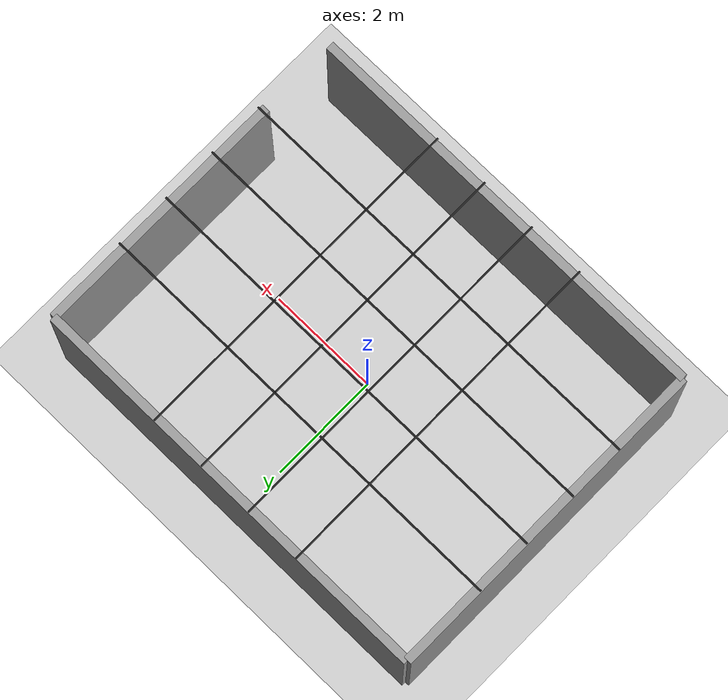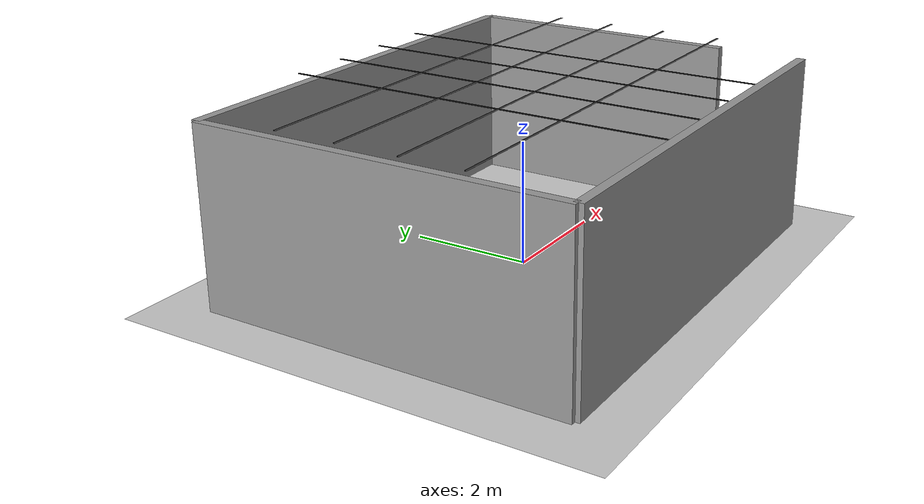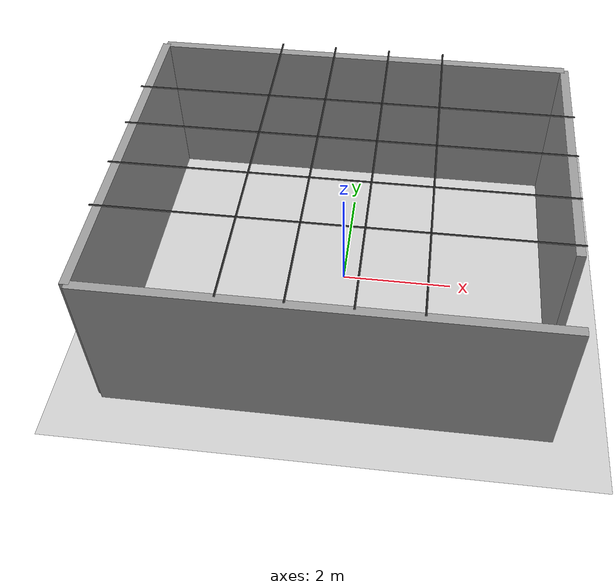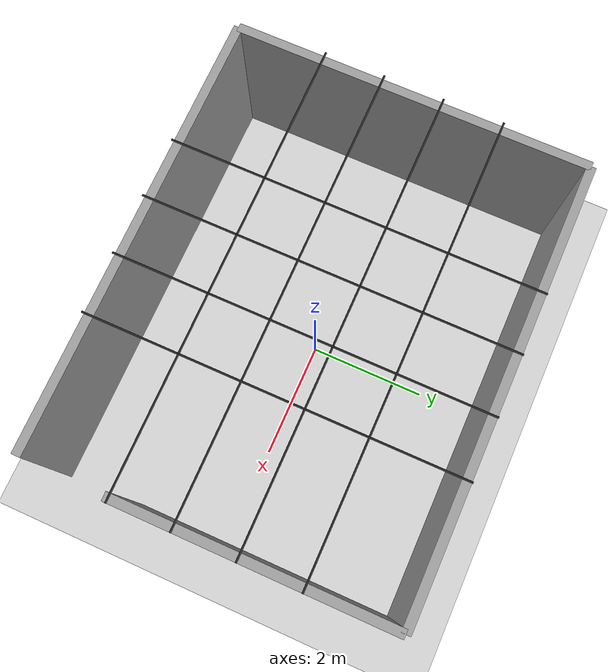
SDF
<?xml version="1.0" ?>
<sdf version="1.6">
 <world name="default">
    <include>
      <uri>model://ground_plane</uri>
    </include>
    <include>
      <uri>model://sun</uri>
    </include>

  <model name='Lab'>
    <pose frame=''>0 0 0 0 0 0</pose>

    <link name='Wall_1'>
      <collision name='Wall_1_Collision'>
        <geometry>
          <box>
            <size>4.6 0.15 3.25</size>
          </box>
        </geometry>
        <pose frame=''>0 0 1.25 0 0 0</pose>
      </collision>
      <visual name='Wall_1_Visual'>
        <pose frame=''>0 0 1.25 0 0 0</pose>
        <geometry>
          <box>
            <size>4.6 0.15 3.25</size>
          </box>
        </geometry>
        <material>
          <script>
            <uri>file://media/materials/scripts/gazebo.material</uri>
            <name>Gazebo/Grey</name>
          </script>
          <ambient>1 1 1 1</ambient>
        </material>
        <meta>
          <layer>0</layer>
        </meta>
      </visual>
      <pose frame=''>3.75 0.7 0 0 0 1.5708</pose>
    </link>

    <link name='Wall_2'>
      <collision name='Wall_2_Collision'>
        <geometry>
          <box>
            <size>7.5 0.15 3.25</size>
          </box>
        </geometry>
        <pose frame=''>0 0 1.25 0 0 0</pose>
      </collision>
      <visual name='Wall_2_Visual'>
        <pose frame=''>0 0 1.25 0 0 0</pose>
        <geometry>
          <box>
            <size>7.5 0.15 3.25</size>
          </box>
        </geometry>
        <material>
          <script>
            <uri>file://media/materials/scripts/gazebo.material</uri>
            <name>Gazebo/Grey</name>
          </script>
          <ambient>1 1 1 1</ambient>
        </material>
        <meta>
          <layer>0</layer>
        </meta>
      </visual>
      <pose frame=''>0 3 0 0 0 3.14159</pose>
    </link>

    <link name='Wall_3'>
      <collision name='Wall_3_Collision'>
        <geometry>
          <box>
            <size>6 0.15 3.25</size>
          </box>
        </geometry>
        <pose frame=''>0 0 1.25 0 0 0</pose>
      </collision>
      <visual name='Wall_3_Visual'>
        <pose frame=''>0 0 1.25 0 0 0</pose>
        <geometry>
          <box>
            <size>6 0.15 3.25</size>
          </box>
        </geometry>
        <material>
          <script>
            <uri>file://media/materials/scripts/gazebo.material</uri>
            <name>Gazebo/Grey</name>
          </script>
          <ambient>1 1 1 1</ambient>
        </material>
        <meta>
          <layer>0</layer>
        </meta>
      </visual>
      <pose frame=''>-3.75 0 0 0 0 -1.5708</pose>
    </link>

    <link name='Wall_4'>
      <collision name='Wall_4_Collision'>
        <geometry>
          <box>
            <size>7.5 0.15 3.25</size>
          </box>
        </geometry>
        <pose frame=''>0 0 1.25 0 0 0</pose>
      </collision>
      <visual name='Wall_4_Visual'>
        <pose frame=''>0 0 1.25 0 0 0</pose>
        <geometry>
          <box>
            <size>7.5 0.15 3.25</size>
          </box>
        </geometry>
        <material>
          <script>
            <uri>file://media/materials/scripts/gazebo.material</uri>
            <name>Gazebo/Grey</name>
          </script>
          <ambient>1 1 1 1</ambient>
        </material>
        <meta>
          <layer>0</layer>
        </meta>
      </visual>
      <pose frame=''>0 -3 0 0 0 0</pose>
    </link>

    <include>
      <uri>model://trave_corta</uri>
      <pose>0.5 0 3 0 0 0</pose>
    </include>
    <include>
      <uri>model://trave_corta</uri>
      <pose>-0.5 0 3 0 0 0</pose>
    </include>
    <include>
      <uri>model://trave_corta</uri>
      <pose>1.5 0 3 0 0 0</pose>
    </include>
    <include>
      <uri>model://trave_corta</uri>
      <pose>-1.5 0 3 0 0 0</pose>
    </include>

    <include>
      <uri>model://trave_lunga</uri>
      <pose>0 0.5 3 0 0 0</pose>
    </include>
    <include>
      <uri>model://trave_lunga</uri>
      <pose>0 -0.5 3 0 0 0</pose>
    </include>
    <include>
      <uri>model://trave_lunga</uri>
      <pose>0 1.5 3 0 0 0</pose>
    </include>
    <include>
      <uri>model://trave_lunga</uri>
      <pose>0 -1.5 3 0 0 0</pose>
    </include>

    <static>1</static>
  </model>
 </world>
</sdf>

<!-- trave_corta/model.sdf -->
<sdf version="1.4">
  <model name="trave_corta">

   <link name="asse_1">
      <collision name="asse_1_collision">
        <geometry>
            <box>
            <size>0.03 6.15 0.01</size>
          </box>
        </geometry>
        <pose frame=''>0 0 0 0 0 0</pose>
      </collision>
      <visual name="asse_1_visual">
        <geometry>
          <box>
            <size>0.03 6.15 0.01</size>
          </box>
        </geometry>
        <pose frame=''>0 0 0 0 0 0</pose>
        <material>
		  <script>
            <uri>file://media/materials/scripts/gazebo.material</uri>
            <name>Gazebo/Black</name>
          </script>
          <ambient>1 1 1 1</ambient>
        </material>
        <meta>
          <layer>0</layer>
        </meta>
      </visual>
      <pose frame=''>0 0 0 0 0 0</pose>
    </link>

  </model>
</sdf>

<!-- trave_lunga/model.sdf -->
<sdf version="1.4">
  <model name="trave_lunga">

   <link name="asse_1">
      <collision name="asse_1_collision">
        <geometry>
            <box>
            <size>7.65 0.03 0.01</size>
          </box>
        </geometry>
        <pose frame=''>0 0 0 0 0 0</pose>
      </collision>
      <visual name="asse_1_visual">
        <geometry>
          <box>
            <size>7.65 0.03 0.01</size>
          </box>
        </geometry>
        <pose frame=''>0 0 0 0 0 0</pose>
        <material>
		  <script>
            <uri>file://media/materials/scripts/gazebo.material</uri>
            <name>Gazebo/Black</name>
          </script>
          <ambient>1 1 1 1</ambient>
        </material>
        <meta>
          <layer>0</layer>
        </meta>
      </visual>
      <pose frame=''>0 0 0 0 0 0</pose>
    </link>

  </model>
</sdf>
